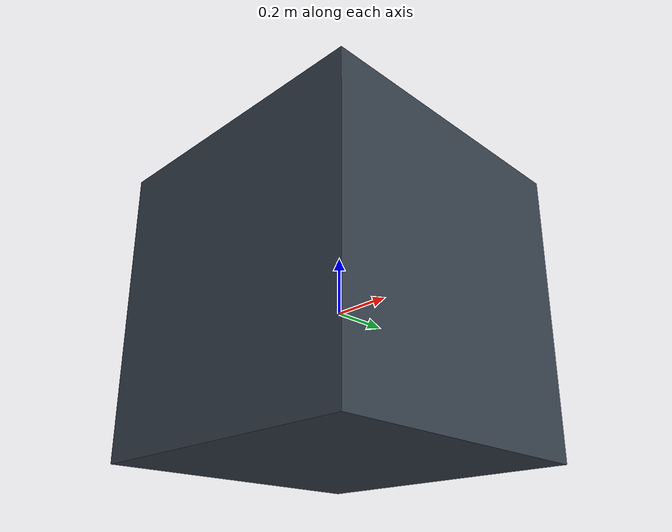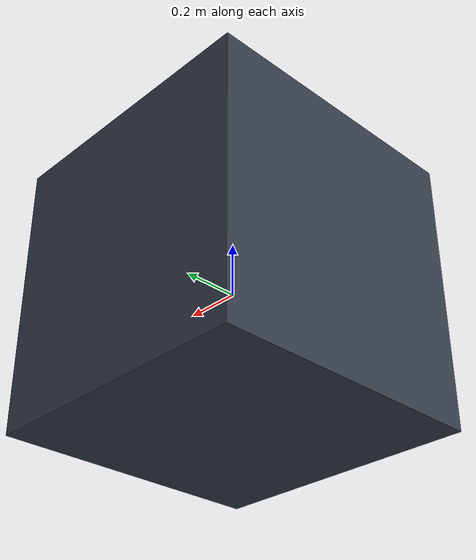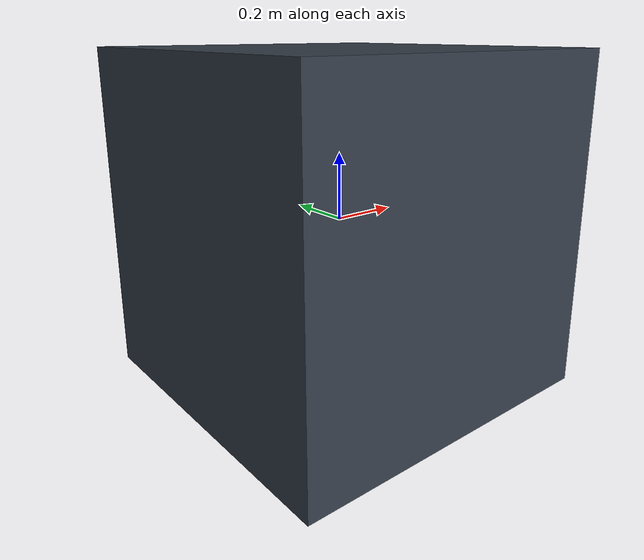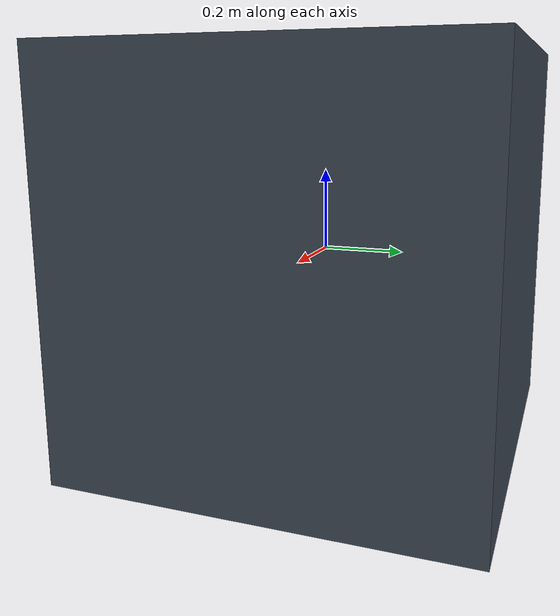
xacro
<?xml version="1.0"?>

<robot name="two_wheel_robot" xmlns:xacro="http://ros.org/wki/xacro">

    <material name="black">
        <color rgba="0.0 0.0 0.0 1.0"/>
    </material>
    <material name="blue">
        <color rgba="0.203125 0.23828125 0.28515625 1.0"/>
    </material>
    <material name="green">
        <color rgba="0.0 0.8 0.0 1.0"/>
    </material>
    <material name="grey">
        <color rgba="0.2 0.2 0.2 1.0"/>
    </material>
    <material name="orange">
        <color rgba="1.0 0.423529411765 0.0392156862745 1.0"/>
    </material>
    <material name="brown">
        <color rgba="0.870588235294 0.811764705882 0.764705882353 1.0"/>
    </material>
    <material name="red">
        <color rgba="0.80078125 0.12890625 0.1328125 1.0"/>
    </material>
    <material name="white">
        <color rgba="1.0 1.0 1.0 1.0"/>
    </material>

    <gazebo reference="link_chasis">
        <material>Gazebo/Orange</material>
    </gazebo>
    <gazebo reference="link_left_wheel">
        <material>Gazebo/Blue</material>
    </gazebo>

    <link name="link_chasis">
        <!-- pose and inertial -->
        <pose>0 0 00.1 0 0 0</pose>
        <inertial>
            <mass value="5"/>
            <origin rpy="0 0 0" xyz="0 0 0.5"/>
            <inertia ixx="0.03954166667" ixy="0" ixz="0" iyy="0.106208333333" iyz="0" izz="0.106208333333"/>
        </inertial>
    <!-- body -->
    <collision name="collision_chasis">
        <geometry>
            <box size="0.5 0.3 0.7"/>
        </geometry>
    </collision>
    <visual>
        <origin rpy="0 0 0" xyz=" 0 0 0" />
        <geometry>
            <box size="1 1 1"/>
        </geometry>
        <material name="blue"/>
    </visual>
    <!-- caster front: third point for wheels so robot does not fall over-->
    <collision name="caster_front_collision">
        <origin rpy="0 0 0" xyz="0.35 0 -0.05"/>
        <geometry>
            <sphere radius="0.05"/>
        </geometry>
        <surface>
            <friction>
                <ode>
                    <mu>0</mu>
                    <mu2>0</mu2>
                    <slip1>1.0</slip1>
                    <slip2>1.0</slip2>
                </ode>
            </friction>
        </surface>
    </collision>
    <visual name="caster_front_visual">
        <origin rpy="0 0 0" xyz="0.2 0 -0.05"/>
        <geometry>
            <sphere radius="0.05"/>
        </geometry>
    </visual>
    </link>

    <link name="link_right_wheel">
        <inertial>
            <mass value="0.2"/>
            <origin rpy="0 1.5707 1.5707" xyz="0 0 0"/>
            <inertia ixx="0.000526666666667" ixy="0" ixz="0" iyy="0.000526666666667" iyz="0" izz="0.001"/>
        </inertial>
        <collision name="link_right_wheel_collision">
            <origin rpy="0 1.5707 1.5707" xyz="0 0 0"/>
            <geometry>
                <cylinder length="0.04" radius="0.1"/>
            </geometry>
        </collision>
        <visual name="link_right_wheel_visual">
            <origin rpy="0 1.5707 1.5707" xyz="0 0 0"/>
            <geometry>
                <cylinder length="0.04" radius="0.1"/>
            </geometry>
        </visual>
    </link>

    <joint name="joint_right_wheel" type="continuous">
        <origin rpy="0 0 0" xyz="-0.05 0.15 0"/>
        <child link="link_right_wheel"/>
        <parent link="link_chasis"/>
        <axis rpy="0 0 0" xyz="0 1 0"/>
        <limit effort="10000" velocity="1000"/>
        <joint_properties damping="1.0" friction="1.0"/>
    </joint>

    <link name="link_left_wheel">
        <inertial>
            <mass value="0.2"/>
            <origin rpy="0 1.5707 1.5707" xyz="0 0 0"/>
            <inertia ixx="0.000526666666667" ixy="0" ixz="0" iyy="0.000526666666667" iyz="0" izz="0.001"/>
        </inertial>
        <collision name="link_left_wheel_collision">
            <origin rpy="0 1.5707 1.5707" xyz="0 0 0"/>
            <geometry>
                <cylinder length="0.04" radius="0.1"/>
            </geometry>
        </collision>
        <visual name="link_left_wheel_visual">
            <origin rpy="0 1.5707 1.5707" xyz="0 0 0"/>
            <geometry>
                <cylinder length="0.04" radius="0.1"/>
            </geometry>
        </visual>
    </link>

    <joint name="joint_left_wheel" type="continuous">
        <origin rpy="0 0 0" xyz="-0.05 -0.15 0"/>
        <child link="link_left_wheel"/>
        <parent link="link_chasis"/>
        <axis rpy="0 0 0" xyz="0 1 0"/>
        <limit effort="10000" velocity="1000"/>
        <joint_properties damping="1.0" friction="1.0"/>
    </joint>

</robot>
